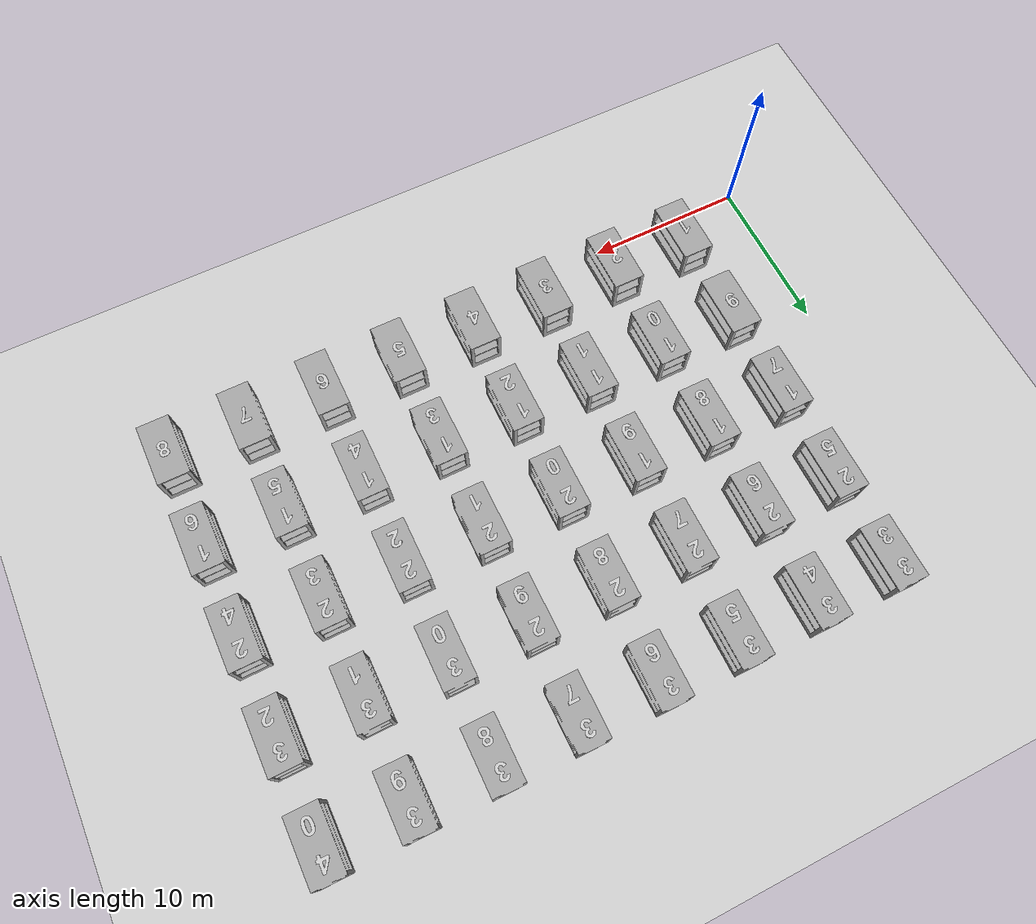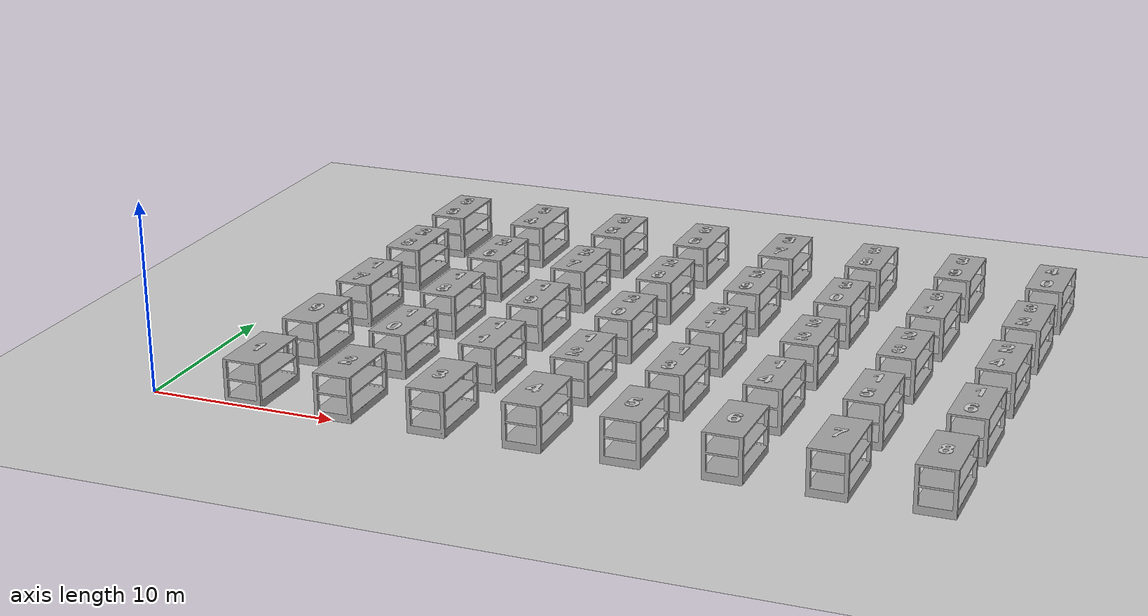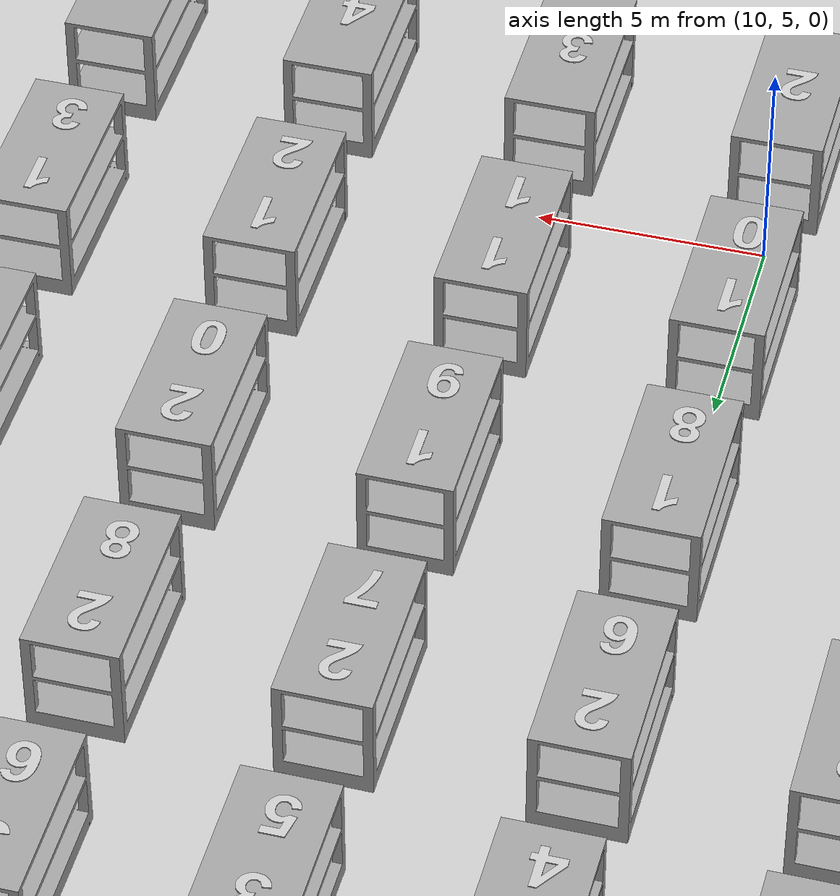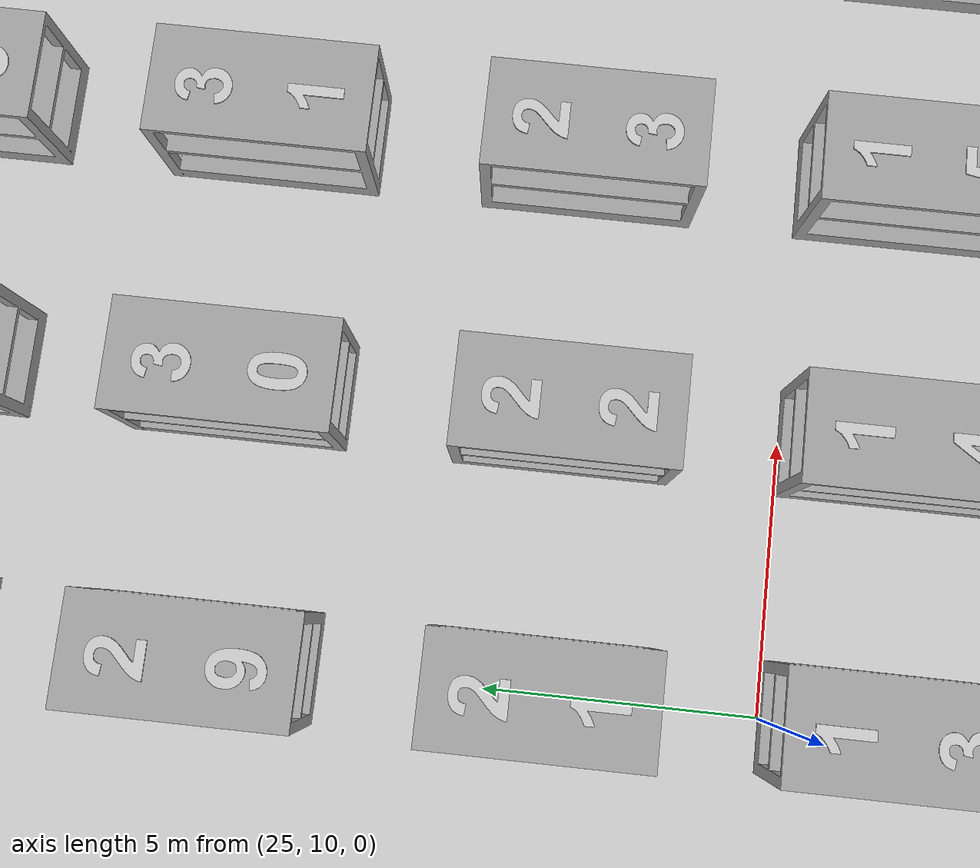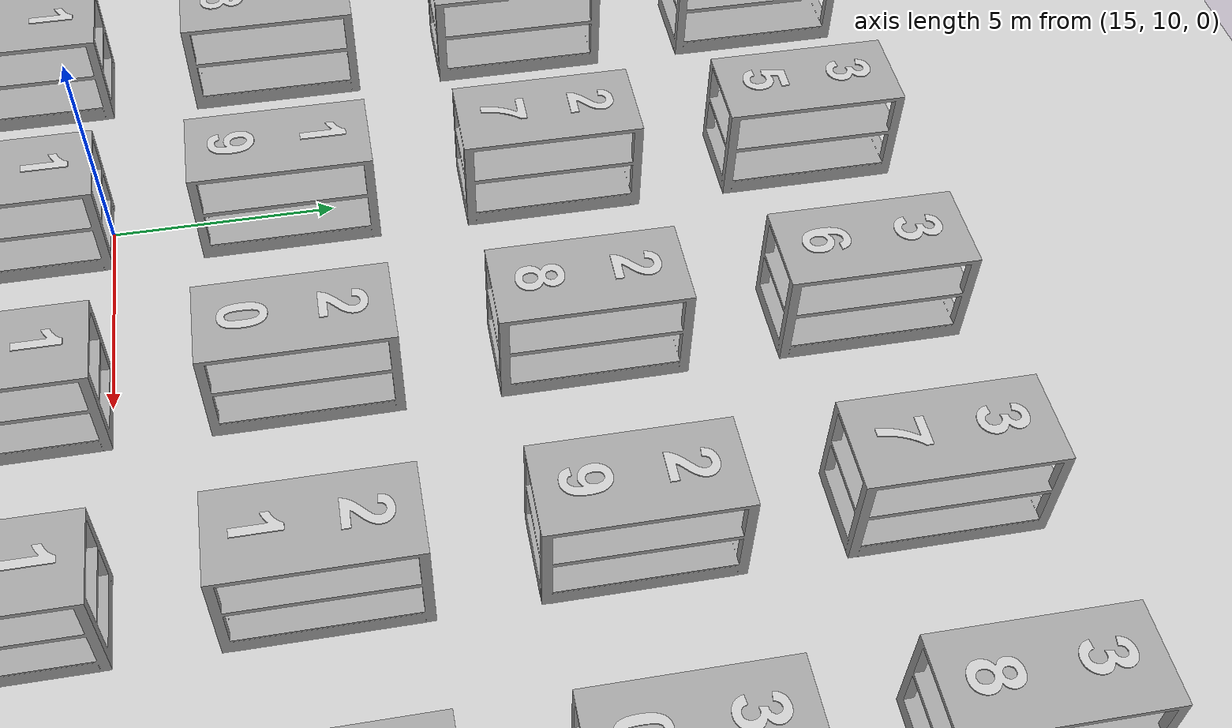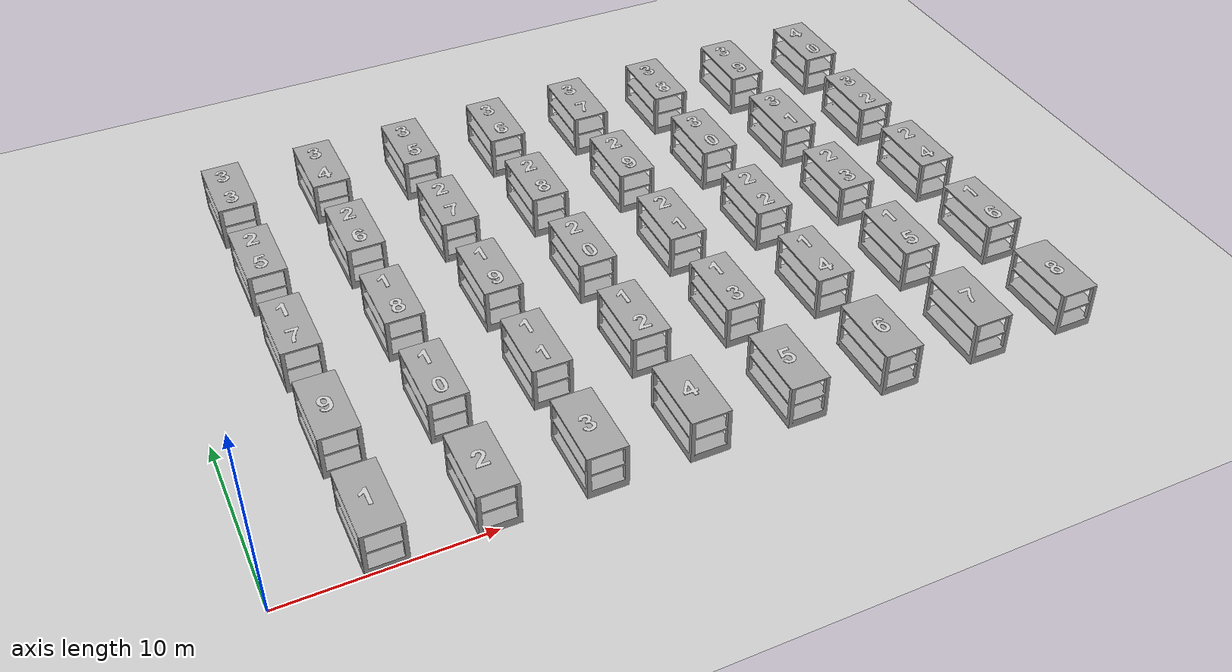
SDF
<?xml version="1.0"?>
<sdf version="1.4">
  <world name="Warehouse">
    <include>
      <uri>model://ground_plane</uri>
    </include>
    <include>
      <uri>model://sun</uri>
    </include>
    <physics type='ode'>
      <max_step_size>0.001</max_step_size>
      <real_time_update_rate>2000</real_time_update_rate>
      <gravity>0 0 -9.8</gravity>
    </physics>

    <model name="rack1">
      <pose>5 4 0  0 0 0</pose>
      <static>true</static>
      <link name="body">
        <visual name="visual">
          <geometry>
            <mesh><uri>file://warehouserack.dae</uri></mesh>
          </geometry>
        </visual>
        <collision name="collision">
          <geometry>
            <mesh><uri>file://warehouserack.dae</uri></mesh>
          </geometry>
        </collision>
      </link>
    </model>

    <model name="rack1_tag">
      <pose>5 2 2.4  0 0 0</pose>
      <static>true</static>
      <link name="body">
        <visual name="visual">
          <geometry>
            <mesh><uri>file://one.dae</uri></mesh>
          </geometry>
        </visual>
        <collision name="collision">
          <geometry>
            <mesh><uri>file://one.dae</uri></mesh>
          </geometry>
        </collision>
      </link>
    </model>

    <model name="rack2">
      <pose>10 4 0  0 0 0</pose>
      <static>true</static>
      <link name="body">
        <visual name="visual">
          <geometry>
            <mesh><uri>file://warehouserack.dae</uri></mesh>
          </geometry>
        </visual>
        <collision name="collision">
          <geometry>
            <mesh><uri>file://warehouserack.dae</uri></mesh>
          </geometry>
        </collision>
      </link>
    </model>

    <model name="rack2_tag">
      <pose>10 2 2.4  0 0 0</pose>
      <static>true</static>
      <link name="body">
        <visual name="visual">
          <geometry>
            <mesh><uri>file://two.dae</uri></mesh>
          </geometry>
        </visual>
        <collision name="collision">
          <geometry>
            <mesh><uri>file://two.dae</uri></mesh>
          </geometry>
        </collision>
      </link>
    </model>

    <model name="rack3">
      <pose>15 4 0  0 0 0</pose>
      <static>true</static>
      <link name="body">
        <visual name="visual">
          <geometry>
            <mesh><uri>file://warehouserack.dae</uri></mesh>
          </geometry>
        </visual>
        <collision name="collision">
          <geometry>
            <mesh><uri>file://warehouserack.dae</uri></mesh>
          </geometry>
        </collision>
      </link>
    </model>

    <model name="rack3_tag">
      <pose>15 2 2.4  0 0 0</pose>
      <static>true</static>
      <link name="body">
        <visual name="visual">
          <geometry>
            <mesh><uri>file://three.dae</uri></mesh>
          </geometry>
        </visual>
        <collision name="collision">
          <geometry>
            <mesh><uri>file://three.dae</uri></mesh>
          </geometry>
        </collision>
      </link>
    </model>

    <model name="rack4">
      <pose>20 4 0  0 0 0</pose>
      <static>true</static>
      <link name="body">
        <visual name="visual">
          <geometry>
            <mesh><uri>file://warehouserack.dae</uri></mesh>
          </geometry>
        </visual>
        <collision name="collision">
          <geometry>
            <mesh><uri>file://warehouserack.dae</uri></mesh>
          </geometry>
        </collision>
      </link>
    </model>

    <model name="rack4_tag">
      <pose>20 2 2.4  0 0 0</pose>
      <static>true</static>
      <link name="body">
        <visual name="visual">
          <geometry>
            <mesh><uri>file://four.dae</uri></mesh>
          </geometry>
        </visual>
        <collision name="collision">
          <geometry>
            <mesh><uri>file://four.dae</uri></mesh>
          </geometry>
        </collision>
      </link>
    </model>

    <model name="rack5">
      <pose>25 4 0  0 0 0</pose>
      <static>true</static>
      <link name="body">
        <visual name="visual">
          <geometry>
            <mesh><uri>file://warehouserack.dae</uri></mesh>
          </geometry>
        </visual>
        <collision name="collision">
          <geometry>
            <mesh><uri>file://warehouserack.dae</uri></mesh>
          </geometry>
        </collision>
      </link>
    </model>

    <model name="rack5_tag">
      <pose>25 2 2.4  0 0 0</pose>
      <static>true</static>
      <link name="body">
        <visual name="visual">
          <geometry>
            <mesh><uri>file://five.dae</uri></mesh>
          </geometry>
        </visual>
        <collision name="collision">
          <geometry>
            <mesh><uri>file://five.dae</uri></mesh>
          </geometry>
        </collision>
      </link>
    </model>

    <model name="rack6">
      <pose>30 4 0  0 0 0</pose>
      <static>true</static>
      <link name="body">
        <visual name="visual">
          <geometry>
            <mesh><uri>file://warehouserack.dae</uri></mesh>
          </geometry>
        </visual>
        <collision name="collision">
          <geometry>
            <mesh><uri>file://warehouserack.dae</uri></mesh>
          </geometry>
        </collision>
      </link>
    </model>

    <model name="rack6_tag">
      <pose>30 2 2.4  0 0 0</pose>
      <static>true</static>
      <link name="body">
        <visual name="visual">
          <geometry>
            <mesh><uri>file://six.dae</uri></mesh>
          </geometry>
        </visual>
        <collision name="collision">
          <geometry>
            <mesh><uri>file://six.dae</uri></mesh>
          </geometry>
        </collision>
      </link>
    </model>

    <model name="rack7">
      <pose>35 4 0  0 0 0</pose>
      <static>true</static>
      <link name="body">
        <visual name="visual">
          <geometry>
            <mesh><uri>file://warehouserack.dae</uri></mesh>
          </geometry>
        </visual>
        <collision name="collision">
          <geometry>
            <mesh><uri>file://warehouserack.dae</uri></mesh>
          </geometry>
        </collision>
      </link>
    </model>

    <model name="rack7_tag">
      <pose>35 2 2.4  0 0 0</pose>
      <static>true</static>
      <link name="body">
        <visual name="visual">
          <geometry>
            <mesh><uri>file://seven.dae</uri></mesh>
          </geometry>
        </visual>
        <collision name="collision">
          <geometry>
            <mesh><uri>file://seven.dae</uri></mesh>
          </geometry>
        </collision>
      </link>
    </model>

    <model name="rack8">
      <pose>40 4 0  0 0 0</pose>
      <static>true</static>
      <link name="body">
        <visual name="visual">
          <geometry>
            <mesh><uri>file://warehouserack.dae</uri></mesh>
          </geometry>
        </visual>
        <collision name="collision">
          <geometry>
            <mesh><uri>file://warehouserack.dae</uri></mesh>
          </geometry>
        </collision>
      </link>
    </model>

    <model name="rack8_tag">
      <pose>40 2 2.4  0 0 0</pose>
      <static>true</static>
      <link name="body">
        <visual name="visual">
          <geometry>
            <mesh><uri>file://eight.dae</uri></mesh>
          </geometry>
        </visual>
        <collision name="collision">
          <geometry>
            <mesh><uri>file://eight.dae</uri></mesh>
          </geometry>
        </collision>
      </link>
    </model>

    <model name="rack9">
      <pose>5 10 0  0 0 0</pose>
      <static>true</static>
      <link name="body">
        <visual name="visual">
          <geometry>
            <mesh><uri>file://warehouserack.dae</uri></mesh>
          </geometry>
        </visual>
        <collision name="collision">
          <geometry>
            <mesh><uri>file://warehouserack.dae</uri></mesh>
          </geometry>
        </collision>
      </link>
    </model>

    <model name="rack9_tag">
      <pose>5 8 2.4  0 0 0</pose>
      <static>true</static>
      <link name="body">
        <visual name="visual">
          <geometry>
            <mesh><uri>file://nine.dae</uri></mesh>
          </geometry>
        </visual>
        <collision name="collision">
          <geometry>
            <mesh><uri>file://nine.dae</uri></mesh>
          </geometry>
        </collision>
      </link>
    </model>

    <model name="rack10">
      <pose>10 10 0  0 0 0</pose>
      <static>true</static>
      <link name="body">
        <visual name="visual">
          <geometry>
            <mesh><uri>file://warehouserack.dae</uri></mesh>
          </geometry>
        </visual>
        <collision name="collision">
          <geometry>
            <mesh><uri>file://warehouserack.dae</uri></mesh>
          </geometry>
        </collision>
      </link>
    </model>

    <model name="rack10_tag">
      <pose>10 9 2.4  0 0 0</pose>
      <static>true</static>
      <link name="body">
        <visual name="visual">
          <geometry>
            <mesh><uri>file://one.dae</uri></mesh>
          </geometry>
        </visual>
        <collision name="collision">
          <geometry>
            <mesh><uri>file://one.dae</uri></mesh>
          </geometry>
        </collision>
      </link>
    </model>

    <model name="rack10_tag">
      <pose>10 7 2.4  0 0 0</pose>
      <static>true</static>
      <link name="body">
        <visual name="visual">
          <geometry>
            <mesh><uri>file://zero.dae</uri></mesh>
          </geometry>
        </visual>
        <collision name="collision">
          <geometry>
            <mesh><uri>file://zero.dae</uri></mesh>
          </geometry>
        </collision>
      </link>
    </model>

    <model name="rack11">
      <pose>15 10 0  0 0 0</pose>
      <static>true</static>
      <link name="body">
        <visual name="visual">
          <geometry>
            <mesh><uri>file://warehouserack.dae</uri></mesh>
          </geometry>
        </visual>
        <collision name="collision">
          <geometry>
            <mesh><uri>file://warehouserack.dae</uri></mesh>
          </geometry>
        </collision>
      </link>
    </model>

    <model name="rack11_tag">
      <pose>15 9 2.4  0 0 0</pose>
      <static>true</static>
      <link name="body">
        <visual name="visual">
          <geometry>
            <mesh><uri>file://one.dae</uri></mesh>
          </geometry>
        </visual>
        <collision name="collision">
          <geometry>
            <mesh><uri>file://one.dae</uri></mesh>
          </geometry>
        </collision>
      </link>
    </model>

    <model name="rack11_tag">
      <pose>15 7 2.4  0 0 0</pose>
      <static>true</static>
      <link name="body">
        <visual name="visual">
          <geometry>
            <mesh><uri>file://one.dae</uri></mesh>
          </geometry>
        </visual>
        <collision name="collision">
          <geometry>
            <mesh><uri>file://one.dae</uri></mesh>
          </geometry>
        </collision>
      </link>
    </model>

    <model name="rack12">
      <pose>20 10 0  0 0 0</pose>
      <static>true</static>
      <link name="body">
        <visual name="visual">
          <geometry>
            <mesh><uri>file://warehouserack.dae</uri></mesh>
          </geometry>
        </visual>
        <collision name="collision">
          <geometry>
            <mesh><uri>file://warehouserack.dae</uri></mesh>
          </geometry>
        </collision>
      </link>
    </model>

    <model name="rack12_tag">
      <pose>20 9 2.4  0 0 0</pose>
      <static>true</static>
      <link name="body">
        <visual name="visual">
          <geometry>
            <mesh><uri>file://one.dae</uri></mesh>
          </geometry>
        </visual>
        <collision name="collision">
          <geometry>
            <mesh><uri>file://one.dae</uri></mesh>
          </geometry>
        </collision>
      </link>
    </model>

    <model name="rack12_tag">
      <pose>20 7 2.4  0 0 0</pose>
      <static>true</static>
      <link name="body">
        <visual name="visual">
          <geometry>
            <mesh><uri>file://two.dae</uri></mesh>
          </geometry>
        </visual>
        <collision name="collision">
          <geometry>
            <mesh><uri>file://two.dae</uri></mesh>
          </geometry>
        </collision>
      </link>
    </model>

    <model name="rack13">
      <pose>25 10 0  0 0 0</pose>
      <static>true</static>
      <link name="body">
        <visual name="visual">
          <geometry>
            <mesh><uri>file://warehouserack.dae</uri></mesh>
          </geometry>
        </visual>
        <collision name="collision">
          <geometry>
            <mesh><uri>file://warehouserack.dae</uri></mesh>
          </geometry>
        </collision>
      </link>
    </model>

    <model name="rack13_tag">
      <pose>25 9 2.4  0 0 0</pose>
      <static>true</static>
      <link name="body">
        <visual name="visual">
          <geometry>
            <mesh><uri>file://one.dae</uri></mesh>
          </geometry>
        </visual>
        <collision name="collision">
          <geometry>
            <mesh><uri>file://one.dae</uri></mesh>
          </geometry>
        </collision>
      </link>
    </model>

    <model name="rack13_tag">
      <pose>25 7 2.4  0 0 0</pose>
      <static>true</static>
      <link name="body">
        <visual name="visual">
          <geometry>
            <mesh><uri>file://three.dae</uri></mesh>
          </geometry>
        </visual>
        <collision name="collision">
          <geometry>
            <mesh><uri>file://three.dae</uri></mesh>
          </geometry>
        </collision>
      </link>
    </model>

    <model name="rack14">
      <pose>30 10 0  0 0 0</pose>
      <static>true</static>
      <link name="body">
        <visual name="visual">
          <geometry>
            <mesh><uri>file://warehouserack.dae</uri></mesh>
          </geometry>
        </visual>
        <collision name="collision">
          <geometry>
            <mesh><uri>file://warehouserack.dae</uri></mesh>
          </geometry>
        </collision>
      </link>
    </model>

    <model name="rack14_tag">
      <pose>30 9 2.4  0 0 0</pose>
      <static>true</static>
      <link name="body">
        <visual name="visual">
          <geometry>
            <mesh><uri>file://one.dae</uri></mesh>
          </geometry>
        </visual>
        <collision name="collision">
          <geometry>
            <mesh><uri>file://one.dae</uri></mesh>
          </geometry>
        </collision>
      </link>
    </model>

    <model name="rack14_tag">
      <pose>30 7 2.4  0 0 0</pose>
      <static>true</static>
      <link name="body">
        <visual name="visual">
          <geometry>
            <mesh><uri>file://four.dae</uri></mesh>
          </geometry>
        </visual>
        <collision name="collision">
          <geometry>
            <mesh><uri>file://four.dae</uri></mesh>
          </geometry>
        </collision>
      </link>
    </model>

    <model name="rack15">
      <pose>35 10 0  0 0 0</pose>
      <static>true</static>
      <link name="body">
        <visual name="visual">
          <geometry>
            <mesh><uri>file://warehouserack.dae</uri></mesh>
          </geometry>
        </visual>
        <collision name="collision">
          <geometry>
            <mesh><uri>file://warehouserack.dae</uri></mesh>
          </geometry>
        </collision>
      </link>
    </model>

    <model name="rack15_tag">
      <pose>35 9 2.4  0 0 0</pose>
      <static>true</static>
      <link name="body">
        <visual name="visual">
          <geometry>
            <mesh><uri>file://one.dae</uri></mesh>
          </geometry>
        </visual>
        <collision name="collision">
          <geometry>
            <mesh><uri>file://one.dae</uri></mesh>
          </geometry>
        </collision>
      </link>
    </model>

    <model name="rack15_tag">
      <pose>35 7 2.4  0 0 0</pose>
      <static>true</static>
      <link name="body">
        <visual name="visual">
          <geometry>
            <mesh><uri>file://five.dae</uri></mesh>
          </geometry>
        </visual>
        <collision name="collision">
          <geometry>
            <mesh><uri>file://five.dae</uri></mesh>
          </geometry>
        </collision>
      </link>
    </model>

    <model name="rack16">
      <pose>40 10 0  0 0 0</pose>
      <static>true</static>
      <link name="body">
        <visual name="visual">
          <geometry>
            <mesh><uri>file://warehouserack.dae</uri></mesh>
          </geometry>
        </visual>
        <collision name="collision">
          <geometry>
            <mesh><uri>file://warehouserack.dae</uri></mesh>
          </geometry>
        </collision>
      </link>
    </model>

    <model name="rack16_tag">
      <pose>40 9 2.4  0 0 0</pose>
      <static>true</static>
      <link name="body">
        <visual name="visual">
          <geometry>
            <mesh><uri>file://one.dae</uri></mesh>
          </geometry>
        </visual>
        <collision name="collision">
          <geometry>
            <mesh><uri>file://one.dae</uri></mesh>
          </geometry>
        </collision>
      </link>
    </model>

    <model name="rack16_tag">
      <pose>40 7 2.4  0 0 0</pose>
      <static>true</static>
      <link name="body">
        <visual name="visual">
          <geometry>
            <mesh><uri>file://six.dae</uri></mesh>
          </geometry>
        </visual>
        <collision name="collision">
          <geometry>
            <mesh><uri>file://six.dae</uri></mesh>
          </geometry>
        </collision>
      </link>
    </model>

    <model name="rack17">
      <pose>5 16 0  0 0 0</pose>
      <static>true</static>
      <link name="body">
        <visual name="visual">
          <geometry>
            <mesh><uri>file://warehouserack.dae</uri></mesh>
          </geometry>
        </visual>
        <collision name="collision">
          <geometry>
            <mesh><uri>file://warehouserack.dae</uri></mesh>
          </geometry>
        </collision>
      </link>
    </model>

    <model name="rack17_tag">
      <pose>5 15 2.4  0 0 0</pose>
      <static>true</static>
      <link name="body">
        <visual name="visual">
          <geometry>
            <mesh><uri>file://one.dae</uri></mesh>
          </geometry>
        </visual>
        <collision name="collision">
          <geometry>
            <mesh><uri>file://one.dae</uri></mesh>
          </geometry>
        </collision>
      </link>
    </model>

    <model name="rack17_tag">
      <pose>5 13 2.4  0 0 0</pose>
      <static>true</static>
      <link name="body">
        <visual name="visual">
          <geometry>
            <mesh><uri>file://seven.dae</uri></mesh>
          </geometry>
        </visual>
        <collision name="collision">
          <geometry>
            <mesh><uri>file://seven.dae</uri></mesh>
          </geometry>
        </collision>
      </link>
    </model>

    <model name="rack18">
      <pose>10 16 0  0 0 0</pose>
      <static>true</static>
      <link name="body">
        <visual name="visual">
          <geometry>
            <mesh><uri>file://warehouserack.dae</uri></mesh>
          </geometry>
        </visual>
        <collision name="collision">
          <geometry>
            <mesh><uri>file://warehouserack.dae</uri></mesh>
          </geometry>
        </collision>
      </link>
    </model>

    <model name="rack18_tag">
      <pose>10 15 2.4  0 0 0</pose>
      <static>true</static>
      <link name="body">
        <visual name="visual">
          <geometry>
            <mesh><uri>file://one.dae</uri></mesh>
          </geometry>
        </visual>
        <collision name="collision">
          <geometry>
            <mesh><uri>file://one.dae</uri></mesh>
          </geometry>
        </collision>
      </link>
    </model>

    <model name="rack18_tag">
      <pose>10 13 2.4  0 0 0</pose>
      <static>true</static>
      <link name="body">
        <visual name="visual">
          <geometry>
            <mesh><uri>file://eight.dae</uri></mesh>
          </geometry>
        </visual>
        <collision name="collision">
          <geometry>
            <mesh><uri>file://eight.dae</uri></mesh>
          </geometry>
        </collision>
      </link>
    </model>

    <model name="rack19">
      <pose>15 16 0  0 0 0</pose>
      <static>true</static>
      <link name="body">
        <visual name="visual">
          <geometry>
            <mesh><uri>file://warehouserack.dae</uri></mesh>
          </geometry>
        </visual>
        <collision name="collision">
          <geometry>
            <mesh><uri>file://warehouserack.dae</uri></mesh>
          </geometry>
        </collision>
      </link>
    </model>

    <model name="rack19_tag">
      <pose>15 15 2.4  0 0 0</pose>
      <static>true</static>
      <link name="body">
        <visual name="visual">
          <geometry>
            <mesh><uri>file://one.dae</uri></mesh>
          </geometry>
        </visual>
        <collision name="collision">
          <geometry>
            <mesh><uri>file://one.dae</uri></mesh>
          </geometry>
        </collision>
      </link>
    </model>

    <model name="rack19_tag">
      <pose>15 13 2.4  0 0 0</pose>
      <static>true</static>
      <link name="body">
        <visual name="visual">
          <geometry>
            <mesh><uri>file://nine.dae</uri></mesh>
          </geometry>
        </visual>
        <collision name="collision">
          <geometry>
            <mesh><uri>file://nine.dae</uri></mesh>
          </geometry>
        </collision>
      </link>
    </model>

    <model name="rack20">
      <pose>20 16 0  0 0 0</pose>
      <static>true</static>
      <link name="body">
        <visual name="visual">
          <geometry>
            <mesh><uri>file://warehouserack.dae</uri></mesh>
          </geometry>
        </visual>
        <collision name="collision">
          <geometry>
            <mesh><uri>file://warehouserack.dae</uri></mesh>
          </geometry>
        </collision>
      </link>
    </model>

    <model name="rack20_tag">
      <pose>20 15 2.4  0 0 0</pose>
      <static>true</static>
      <link name="body">
        <visual name="visual">
          <geometry>
            <mesh><uri>file://two.dae</uri></mesh>
          </geometry>
        </visual>
        <collision name="collision">
          <geometry>
            <mesh><uri>file://two.dae</uri></mesh>
          </geometry>
        </collision>
      </link>
    </model>

    <model name="rack20_tag">
      <pose>20 13 2.4  0 0 0</pose>
      <static>true</static>
      <link name="body">
        <visual name="visual">
          <geometry>
            <mesh><uri>file://zero.dae</uri></mesh>
          </geometry>
        </visual>
        <collision name="collision">
          <geometry>
            <mesh><uri>file://zero.dae</uri></mesh>
          </geometry>
        </collision>
      </link>
    </model>

    <model name="rack21">
      <pose>25 16 0  0 0 0</pose>
      <static>true</static>
      <link name="body">
        <visual name="visual">
          <geometry>
            <mesh><uri>file://warehouserack.dae</uri></mesh>
          </geometry>
        </visual>
        <collision name="collision">
          <geometry>
            <mesh><uri>file://warehouserack.dae</uri></mesh>
          </geometry>
        </collision>
      </link>
    </model>

    <model name="rack21_tag">
      <pose>25 15 2.4  0 0 0</pose>
      <static>true</static>
      <link name="body">
        <visual name="visual">
          <geometry>
            <mesh><uri>file://two.dae</uri></mesh>
          </geometry>
        </visual>
        <collision name="collision">
          <geometry>
            <mesh><uri>file://two.dae</uri></mesh>
          </geometry>
        </collision>
      </link>
    </model>

    <model name="rack21_tag">
      <pose>25 13 2.4  0 0 0</pose>
      <static>true</static>
      <link name="body">
        <visual name="visual">
          <geometry>
            <mesh><uri>file://one.dae</uri></mesh>
          </geometry>
        </visual>
        <collision name="collision">
          <geometry>
            <mesh><uri>file://one.dae</uri></mesh>
          </geometry>
        </collision>
      </link>
    </model>

    <model name="rack22">
      <pose>30 16 0  0 0 0</pose>
      <static>true</static>
      <link name="body">
        <visual name="visual">
          <geometry>
            <mesh><uri>file://warehouserack.dae</uri></mesh>
          </geometry>
        </visual>
        <collision name="collision">
          <geometry>
            <mesh><uri>file://warehouserack.dae</uri></mesh>
          </geometry>
        </collision>
      </link>
    </model>

    <model name="rack22_tag">
      <pose>30 15 2.4  0 0 0</pose>
      <static>true</static>
      <link name="body">
        <visual name="visual">
          <geometry>
            <mesh><uri>file://two.dae</uri></mesh>
          </geometry>
        </visual>
        <collision name="collision">
          <geometry>
            <mesh><uri>file://two.dae</uri></mesh>
          </geometry>
        </collision>
      </link>
    </model>

    <model name="rack22_tag">
      <pose>30 13 2.4  0 0 0</pose>
      <static>true</static>
      <link name="body">
        <visual name="visual">
          <geometry>
            <mesh><uri>file://two.dae</uri></mesh>
          </geometry>
        </visual>
        <collision name="collision">
          <geometry>
            <mesh><uri>file://two.dae</uri></mesh>
          </geometry>
        </collision>
      </link>
    </model>

    <model name="rack23">
      <pose>35 16 0  0 0 0</pose>
      <static>true</static>
      <link name="body">
        <visual name="visual">
          <geometry>
            <mesh><uri>file://warehouserack.dae</uri></mesh>
          </geometry>
        </visual>
        <collision name="collision">
          <geometry>
            <mesh><uri>file://warehouserack.dae</uri></mesh>
          </geometry>
        </collision>
      </link>
    </model>

    <model name="rack23_tag">
      <pose>35 15 2.4  0 0 0</pose>
      <static>true</static>
      <link name="body">
        <visual name="visual">
          <geometry>
            <mesh><uri>file://two.dae</uri></mesh>
          </geometry>
        </visual>
        <collision name="collision">
          <geometry>
            <mesh><uri>file://two.dae</uri></mesh>
          </geometry>
        </collision>
      </link>
    </model>

    <model name="rack23_tag">
      <pose>35 13 2.4  0 0 0</pose>
      <static>true</static>
      <link name="body">
        <visual name="visual">
          <geometry>
            <mesh><uri>file://three.dae</uri></mesh>
          </geometry>
        </visual>
        <collision name="collision">
          <geometry>
            <mesh><uri>file://three.dae</uri></mesh>
          </geometry>
        </collision>
      </link>
    </model>

    <model name="rack24">
      <pose>40 16 0  0 0 0</pose>
      <static>true</static>
      <link name="body">
        <visual name="visual">
          <geometry>
            <mesh><uri>file://warehouserack.dae</uri></mesh>
          </geometry>
        </visual>
        <collision name="collision">
          <geometry>
            <mesh><uri>file://warehouserack.dae</uri></mesh>
          </geometry>
        </collision>
      </link>
    </model>

    <model name="rack24_tag">
      <pose>40 15 2.4  0 0 0</pose>
      <static>true</static>
      <link name="body">
        <visual name="visual">
          <geometry>
            <mesh><uri>file://two.dae</uri></mesh>
          </geometry>
        </visual>
        <collision name="collision">
          <geometry>
            <mesh><uri>file://two.dae</uri></mesh>
          </geometry>
        </collision>
      </link>
    </model>

    <model name="rack24_tag">
      <pose>40 13 2.4  0 0 0</pose>
      <static>true</static>
      <link name="body">
        <visual name="visual">
          <geometry>
            <mesh><uri>file://four.dae</uri></mesh>
          </geometry>
        </visual>
        <collision name="collision">
          <geometry>
            <mesh><uri>file://four.dae</uri></mesh>
          </geometry>
        </collision>
      </link>
    </model>

    <model name="rack25">
      <pose>5 22 0  0 0 0</pose>
      <static>true</static>
      <link name="body">
        <visual name="visual">
          <geometry>
            <mesh><uri>file://warehouserack.dae</uri></mesh>
          </geometry>
        </visual>
        <collision name="collision">
          <geometry>
            <mesh><uri>file://warehouserack.dae</uri></mesh>
          </geometry>
        </collision>
      </link>
    </model>

    <model name="rack25_tag">
      <pose>5 21 2.4  0 0 0</pose>
      <static>true</static>
      <link name="body">
        <visual name="visual">
          <geometry>
            <mesh><uri>file://two.dae</uri></mesh>
          </geometry>
        </visual>
        <collision name="collision">
          <geometry>
            <mesh><uri>file://two.dae</uri></mesh>
          </geometry>
        </collision>
      </link>
    </model>

    <model name="rack25_tag">
      <pose>5 19 2.4  0 0 0</pose>
      <static>true</static>
      <link name="body">
        <visual name="visual">
          <geometry>
            <mesh><uri>file://five.dae</uri></mesh>
          </geometry>
        </visual>
        <collision name="collision">
          <geometry>
            <mesh><uri>file://five.dae</uri></mesh>
          </geometry>
        </collision>
      </link>
    </model>

    <model name="rack26">
      <pose>10 22 0  0 0 0</pose>
      <static>true</static>
      <link name="body">
        <visual name="visual">
          <geometry>
            <mesh><uri>file://warehouserack.dae</uri></mesh>
          </geometry>
        </visual>
        <collision name="collision">
          <geometry>
            <mesh><uri>file://warehouserack.dae</uri></mesh>
          </geometry>
        </collision>
      </link>
    </model>

    <model name="rack26_tag">
      <pose>10 21 2.4  0 0 0</pose>
      <static>true</static>
      <link name="body">
        <visual name="visual">
          <geometry>
            <mesh><uri>file://two.dae</uri></mesh>
          </geometry>
        </visual>
        <collision name="collision">
          <geometry>
            <mesh><uri>file://two.dae</uri></mesh>
          </geometry>
        </collision>
      </link>
    </model>

    <model name="rack26_tag">
      <pose>10 19 2.4  0 0 0</pose>
      <static>true</static>
      <link name="body">
        <visual name="visual">
          <geometry>
            <mesh><uri>file://six.dae</uri></mesh>
          </geometry>
        </visual>
        <collision name="collision">
          <geometry>
            <mesh><uri>file://six.dae</uri></mesh>
          </geometry>
        </collision>
      </link>
    </model>

    <model name="rack27">
      <pose>15 22 0  0 0 0</pose>
      <static>true</static>
      <link name="body">
        <visual name="visual">
          <geometry>
            <mesh><uri>file://warehouserack.dae</uri></mesh>
          </geometry>
        </visual>
        <collision name="collision">
          <geometry>
            <mesh><uri>file://warehouserack.dae</uri></mesh>
          </geometry>
        </collision>
      </link>
    </model>

    <model name="rack27_tag">
      <pose>15 21 2.4  0 0 0</pose>
      <static>true</static>
      <link name="body">
        <visual name="visual">
          <geometry>
            <mesh><uri>file://two.dae</uri></mesh>
          </geometry>
        </visual>
        <collision name="collision">
          <geometry>
            <mesh><uri>file://two.dae</uri></mesh>
          </geometry>
        </collision>
      </link>
    </model>

    <model name="rack27_tag">
      <pose>15 19 2.4  0 0 0</pose>
      <static>true</static>
      <link name="body">
        <visual name="visual">
          <geometry>
            <mesh><uri>file://seven.dae</uri></mesh>
          </geometry>
        </visual>
        <collision name="collision">
          <geometry>
            <mesh><uri>file://seven.dae</uri></mesh>
          </geometry>
        </collision>
      </link>
    </model>

    <model name="rack28">
      <pose>20 22 0  0 0 0</pose>
      <static>true</static>
      <link name="body">
        <visual name="visual">
          <geometry>
            <mesh><uri>file://warehouserack.dae</uri></mesh>
          </geometry>
        </visual>
        <collision name="collision">
          <geometry>
            <mesh><uri>file://warehouserack.dae</uri></mesh>
          </geometry>
        </collision>
      </link>
    </model>

    <model name="rack28_tag">
      <pose>20 21 2.4  0 0 0</pose>
      <static>true</static>
      <link name="body">
        <visual name="visual">
          <geometry>
            <mesh><uri>file://two.dae</uri></mesh>
          </geometry>
        </visual>
        <collision name="collision">
          <geometry>
            <mesh><uri>file://two.dae</uri></mesh>
          </geometry>
        </collision>
      </link>
    </model>

    <model name="rack28_tag">
      <pose>20 19 2.4  0 0 0</pose>
      <static>true</static>
      <link name="body">
        <visual name="visual">
          <geometry>
            <mesh><uri>file://eight.dae</uri></mesh>
          </geometry>
        </visual>
        <collision name="collision">
          <geometry>
            <mesh><uri>file://eight.dae</uri></mesh>
          </geometry>
        </collision>
      </link>
    </model>

    <model name="rack29">
      <pose>25 22 0  0 0 0</pose>
      <static>true</static>
      <link name="body">
        <visual name="visual">
          <geometry>
            <mesh><uri>file://warehouserack.dae</uri></mesh>
          </geometry>
        </visual>
        <collision name="collision">
          <geometry>
            <mesh><uri>file://warehouserack.dae</uri></mesh>
          </geometry>
        </collision>
      </link>
    </model>

    <model name="rack29_tag">
      <pose>25 21 2.4  0 0 0</pose>
      <static>true</static>
      <link name="body">
        <visual name="visual">
          <geometry>
            <mesh><uri>file://two.dae</uri></mesh>
          </geometry>
        </visual>
        <collision name="collision">
          <geometry>
            <mesh><uri>file://two.dae</uri></mesh>
          </geometry>
        </collision>
      </link>
    </model>

    <model name="rack29_tag">
      <pose>25 19 2.4  0 0 0</pose>
      <static>true</static>
      <link name="body">
        <visual name="visual">
          <geometry>
            <mesh><uri>file://nine.dae</uri></mesh>
          </geometry>
        </visual>
        <collision name="collision">
          <geometry>
            <mesh><uri>file://nine.dae</uri></mesh>
          </geometry>
        </collision>
      </link>
    </model>

    <model name="rack30">
      <pose>30 22 0  0 0 0</pose>
      <static>true</static>
      <link name="body">
        <visual name="visual">
          <geometry>
            <mesh><uri>file://warehouserack.dae</uri></mesh>
          </geometry>
        </visual>
        <collision name="collision">
          <geometry>
            <mesh><uri>file://warehouserack.dae</uri></mesh>
          </geometry>
        </collision>
      </link>
    </model>

    <model name="rack30_tag">
      <pose>30 21 2.4  0 0 0</pose>
      <static>true</static>
      <link name="body">
        <visual name="visual">
          <geometry>
            <mesh><uri>file://three.dae</uri></mesh>
          </geometry>
        </visual>
        <collision name="collision">
          <geometry>
            <mesh><uri>file://three.dae</uri></mesh>
          </geometry>
        </collision>
      </link>
    </model>

    <model name="rack30_tag">
      <pose>30 19 2.4  0 0 0</pose>
      <static>true</static>
      <link name="body">
        <visual name="visual">
          <geometry>
            <mesh><uri>file://zero.dae</uri></mesh>
          </geometry>
        </visual>
        <collision name="collision">
          <geometry>
            <mesh><uri>file://zero.dae</uri></mesh>
          </geometry>
        </collision>
      </link>
    </model>

    <model name="rack31">
      <pose>35 22 0  0 0 0</pose>
      <static>true</static>
      <link name="body">
        <visual name="visual">
          <geometry>
            <mesh><uri>file://warehouserack.dae</uri></mesh>
          </geometry>
        </visual>
        <collision name="collision">
          <geometry>
            <mesh><uri>file://warehouserack.dae</uri></mesh>
          </geometry>
        </collision>
      </link>
    </model>

    <model name="rack31_tag">
      <pose>35 21 2.4  0 0 0</pose>
      <static>true</static>
      <link name="body">
        <visual name="visual">
          <geometry>
            <mesh><uri>file://three.dae</uri></mesh>
          </geometry>
        </visual>
        <collision name="collision">
          <geometry>
            <mesh><uri>file://three.dae</uri></mesh>
          </geometry>
        </collision>
      </link>
    </model>

    <model name="rack31_tag">
      <pose>35 19 2.4  0 0 0</pose>
      <static>true</static>
      <link name="body">
        <visual name="visual">
          <geometry>
            <mesh><uri>file://one.dae</uri></mesh>
          </geometry>
        </visual>
        <collision name="collision">
          <geometry>
            <mesh><uri>file://one.dae</uri></mesh>
          </geometry>
        </collision>
      </link>
    </model>

    <model name="rack32">
      <pose>40 22 0  0 0 0</pose>
      <static>true</static>
      <link name="body">
        <visual name="visual">
          <geometry>
            <mesh><uri>file://warehouserack.dae</uri></mesh>
          </geometry>
        </visual>
        <collision name="collision">
          <geometry>
            <mesh><uri>file://warehouserack.dae</uri></mesh>
          </geometry>
        </collision>
      </link>
    </model>

    <model name="rack32_tag">
      <pose>40 21 2.4  0 0 0</pose>
      <static>true</static>
      <link name="body">
        <visual name="visual">
          <geometry>
            <mesh><uri>file://three.dae</uri></mesh>
          </geometry>
        </visual>
        <collision name="collision">
          <geometry>
            <mesh><uri>file://three.dae</uri></mesh>
          </geometry>
        </collision>
      </link>
    </model>

    <model name="rack32_tag">
      <pose>40 19 2.4  0 0 0</pose>
      <static>true</static>
      <link name="body">
        <visual name="visual">
          <geometry>
            <mesh><uri>file://two.dae</uri></mesh>
          </geometry>
        </visual>
        <collision name="collision">
          <geometry>
            <mesh><uri>file://two.dae</uri></mesh>
          </geometry>
        </collision>
      </link>
    </model>

    <model name="rack33">
      <pose>5 28 0  0 0 0</pose>
      <static>true</static>
      <link name="body">
        <visual name="visual">
          <geometry>
            <mesh><uri>file://warehouserack.dae</uri></mesh>
          </geometry>
        </visual>
        <collision name="collision">
          <geometry>
            <mesh><uri>file://warehouserack.dae</uri></mesh>
          </geometry>
        </collision>
      </link>
    </model>

    <model name="rack33_tag">
      <pose>5 27 2.4  0 0 0</pose>
      <static>true</static>
      <link name="body">
        <visual name="visual">
          <geometry>
            <mesh><uri>file://three.dae</uri></mesh>
          </geometry>
        </visual>
        <collision name="collision">
          <geometry>
            <mesh><uri>file://three.dae</uri></mesh>
          </geometry>
        </collision>
      </link>
    </model>

    <model name="rack33_tag">
      <pose>5 25 2.4  0 0 0</pose>
      <static>true</static>
      <link name="body">
        <visual name="visual">
          <geometry>
            <mesh><uri>file://three.dae</uri></mesh>
          </geometry>
        </visual>
        <collision name="collision">
          <geometry>
            <mesh><uri>file://three.dae</uri></mesh>
          </geometry>
        </collision>
      </link>
    </model>

    <model name="rack34">
      <pose>10 28 0  0 0 0</pose>
      <static>true</static>
      <link name="body">
        <visual name="visual">
          <geometry>
            <mesh><uri>file://warehouserack.dae</uri></mesh>
          </geometry>
        </visual>
        <collision name="collision">
          <geometry>
            <mesh><uri>file://warehouserack.dae</uri></mesh>
          </geometry>
        </collision>
      </link>
    </model>

    <model name="rack34_tag">
      <pose>10 27 2.4  0 0 0</pose>
      <static>true</static>
      <link name="body">
        <visual name="visual">
          <geometry>
            <mesh><uri>file://three.dae</uri></mesh>
          </geometry>
        </visual>
        <collision name="collision">
          <geometry>
            <mesh><uri>file://three.dae</uri></mesh>
          </geometry>
        </collision>
      </link>
    </model>

    <model name="rack34_tag">
      <pose>10 25 2.4  0 0 0</pose>
      <static>true</static>
      <link name="body">
        <visual name="visual">
          <geometry>
            <mesh><uri>file://four.dae</uri></mesh>
          </geometry>
        </visual>
        <collision name="collision">
          <geometry>
            <mesh><uri>file://four.dae</uri></mesh>
          </geometry>
        </collision>
      </link>
    </model>

    <model name="rack35">
      <pose>15 28 0  0 0 0</pose>
      <static>true</static>
      <link name="body">
        <visual name="visual">
          <geometry>
            <mesh><uri>file://warehouserack.dae</uri></mesh>
          </geometry>
        </visual>
        <collision name="collision">
          <geometry>
            <mesh><uri>file://warehouserack.dae</uri></mesh>
          </geometry>
        </collision>
      </link>
    </model>

    <model name="rack35_tag">
      <pose>15 27 2.4  0 0 0</pose>
      <static>true</static>
      <link name="body">
        <visual name="visual">
          <geometry>
            <mesh><uri>file://three.dae</uri></mesh>
          </geometry>
        </visual>
        <collision name="collision">
          <geometry>
            <mesh><uri>file://three.dae</uri></mesh>
          </geometry>
        </collision>
      </link>
    </model>

    <model name="rack35_tag">
      <pose>15 25 2.4  0 0 0</pose>
      <static>true</static>
      <link name="body">
        <visual name="visual">
          <geometry>
            <mesh><uri>file://five.dae</uri></mesh>
          </geometry>
        </visual>
        <collision name="collision">
          <geometry>
            <mesh><uri>file://five.dae</uri></mesh>
          </geometry>
        </collision>
      </link>
    </model>

    <model name="rack36">
      <pose>20 28 0  0 0 0</pose>
      <static>true</static>
      <link name="body">
        <visual name="visual">
          <geometry>
            <mesh><uri>file://warehouserack.dae</uri></mesh>
          </geometry>
        </visual>
        <collision name="collision">
          <geometry>
            <mesh><uri>file://warehouserack.dae</uri></mesh>
          </geometry>
        </collision>
      </link>
    </model>

    <model name="rack36_tag">
      <pose>20 27 2.4  0 0 0</pose>
      <static>true</static>
      <link name="body">
        <visual name="visual">
          <geometry>
            <mesh><uri>file://three.dae</uri></mesh>
          </geometry>
        </visual>
        <collision name="collision">
          <geometry>
            <mesh><uri>file://three.dae</uri></mesh>
          </geometry>
        </collision>
      </link>
    </model>

    <model name="rack36_tag">
      <pose>20 25 2.4  0 0 0</pose>
      <static>true</static>
      <link name="body">
        <visual name="visual">
          <geometry>
            <mesh><uri>file://six.dae</uri></mesh>
          </geometry>
        </visual>
        <collision name="collision">
          <geometry>
            <mesh><uri>file://six.dae</uri></mesh>
          </geometry>
        </collision>
      </link>
    </model>

    <model name="rack37">
      <pose>25 28 0  0 0 0</pose>
      <static>true</static>
      <link name="body">
        <visual name="visual">
          <geometry>
            <mesh><uri>file://warehouserack.dae</uri></mesh>
          </geometry>
        </visual>
        <collision name="collision">
          <geometry>
            <mesh><uri>file://warehouserack.dae</uri></mesh>
          </geometry>
        </collision>
      </link>
    </model>

    <model name="rack37_tag">
      <pose>25 27 2.4  0 0 0</pose>
      <static>true</static>
      <link name="body">
        <visual name="visual">
          <geometry>
            <mesh><uri>file://three.dae</uri></mesh>
          </geometry>
        </visual>
        <collision name="collision">
          <geometry>
            <mesh><uri>file://three.dae</uri></mesh>
          </geometry>
        </collision>
      </link>
    </model>

    <model name="rack37_tag">
      <pose>25 25 2.4  0 0 0</pose>
      <static>true</static>
      <link name="body">
        <visual name="visual">
          <geometry>
            <mesh><uri>file://seven.dae</uri></mesh>
          </geometry>
        </visual>
        <collision name="collision">
          <geometry>
            <mesh><uri>file://seven.dae</uri></mesh>
          </geometry>
        </collision>
      </link>
    </model>

    <model name="rack38">
      <pose>30 28 0  0 0 0</pose>
      <static>true</static>
      <link name="body">
        <visual name="visual">
          <geometry>
            <mesh><uri>file://warehouserack.dae</uri></mesh>
          </geometry>
        </visual>
        <collision name="collision">
          <geometry>
            <mesh><uri>file://warehouserack.dae</uri></mesh>
          </geometry>
        </collision>
      </link>
    </model>

    <model name="rack38_tag">
      <pose>30 27 2.4  0 0 0</pose>
      <static>true</static>
      <link name="body">
        <visual name="visual">
          <geometry>
            <mesh><uri>file://three.dae</uri></mesh>
          </geometry>
        </visual>
        <collision name="collision">
          <geometry>
            <mesh><uri>file://three.dae</uri></mesh>
          </geometry>
        </collision>
      </link>
    </model>

    <model name="rack38_tag">
      <pose>30 25 2.4  0 0 0</pose>
      <static>true</static>
      <link name="body">
        <visual name="visual">
          <geometry>
            <mesh><uri>file://eight.dae</uri></mesh>
          </geometry>
        </visual>
        <collision name="collision">
          <geometry>
            <mesh><uri>file://eight.dae</uri></mesh>
          </geometry>
        </collision>
      </link>
    </model>

    <model name="rack39">
      <pose>35 28 0  0 0 0</pose>
      <static>true</static>
      <link name="body">
        <visual name="visual">
          <geometry>
            <mesh><uri>file://warehouserack.dae</uri></mesh>
          </geometry>
        </visual>
        <collision name="collision">
          <geometry>
            <mesh><uri>file://warehouserack.dae</uri></mesh>
          </geometry>
        </collision>
      </link>
    </model>

    <model name="rack39_tag">
      <pose>35 27 2.4  0 0 0</pose>
      <static>true</static>
      <link name="body">
        <visual name="visual">
          <geometry>
            <mesh><uri>file://three.dae</uri></mesh>
          </geometry>
        </visual>
        <collision name="collision">
          <geometry>
            <mesh><uri>file://three.dae</uri></mesh>
          </geometry>
        </collision>
      </link>
    </model>

    <model name="rack39_tag">
      <pose>35 25 2.4  0 0 0</pose>
      <static>true</static>
      <link name="body">
        <visual name="visual">
          <geometry>
            <mesh><uri>file://nine.dae</uri></mesh>
          </geometry>
        </visual>
        <collision name="collision">
          <geometry>
            <mesh><uri>file://nine.dae</uri></mesh>
          </geometry>
        </collision>
      </link>
    </model>

    <model name="rack40">
      <pose>40 28 0  0 0 0</pose>
      <static>true</static>
      <link name="body">
        <visual name="visual">
          <geometry>
            <mesh><uri>file://warehouserack.dae</uri></mesh>
          </geometry>
        </visual>
        <collision name="collision">
          <geometry>
            <mesh><uri>file://warehouserack.dae</uri></mesh>
          </geometry>
        </collision>
      </link>
    </model>

    <model name="rack40_tag">
      <pose>40 27 2.4  0 0 0</pose>
      <static>true</static>
      <link name="body">
        <visual name="visual">
          <geometry>
            <mesh><uri>file://four.dae</uri></mesh>
          </geometry>
        </visual>
        <collision name="collision">
          <geometry>
            <mesh><uri>file://four.dae</uri></mesh>
          </geometry>
        </collision>
      </link>
    </model>

    <model name="rack40_tag">
      <pose>40 25 2.4  0 0 0</pose>
      <static>true</static>
      <link name="body">
        <visual name="visual">
          <geometry>
            <mesh><uri>file://zero.dae</uri></mesh>
          </geometry>
        </visual>
        <collision name="collision">
          <geometry>
            <mesh><uri>file://zero.dae</uri></mesh>
          </geometry>
        </collision>
      </link>
    </model>

  </world>
</sdf>
